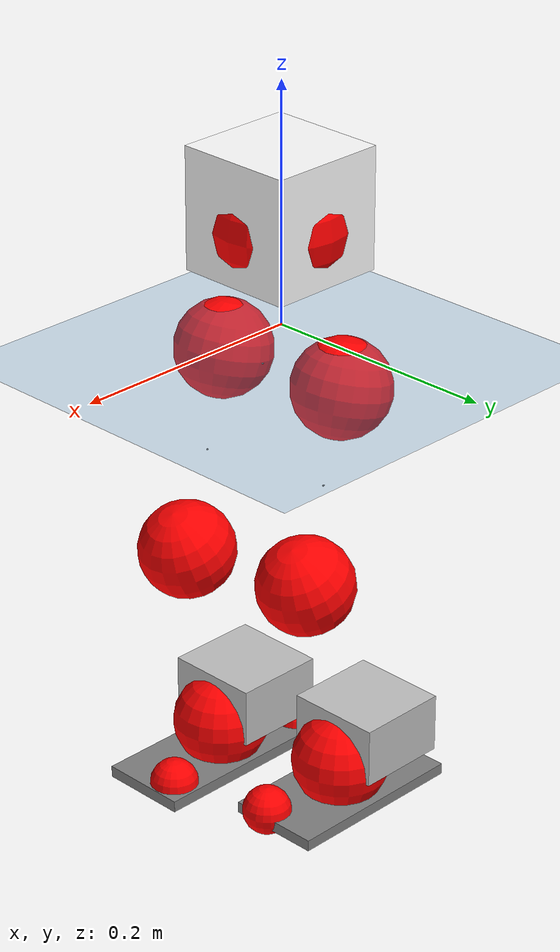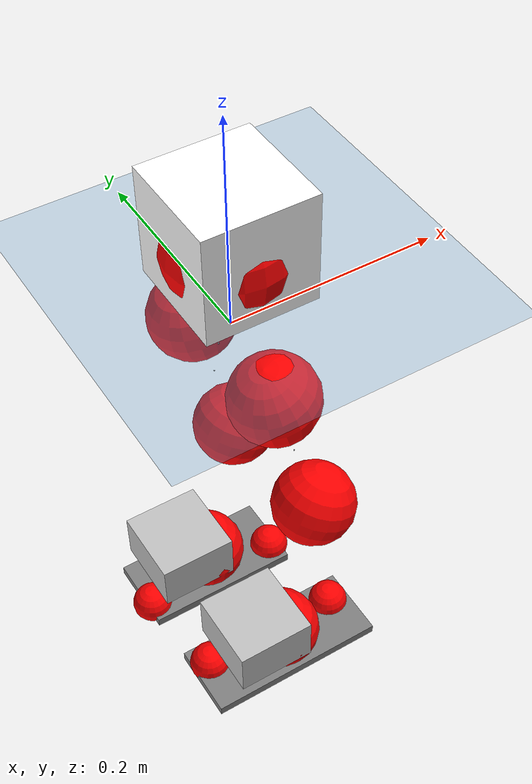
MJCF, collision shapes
<mujoco model="pi_12dof_release_v1">
  <compiler angle="radian" assetdir="assets" balanceinertia="true" inertiafromgeom="false"/>

  <option timestep="0.005" density="1.2" viscosity="2e-05"/>

  <size nkey="1"/>

  <visual>
    <quality shadowsize="8192"/>
    <map shadowclip="0.5"/>
  </visual>

  <default>
    <default class="/">
      <joint armature="0.01" damping="0.01" frictionloss="0.01"/>
      <geom contype="0" conaffinity="0" group="1" solref="-1000 -80"/>
      <site size="0.01 0.005 0.005" group="5"/>
      <general forcelimited="true" biastype="affine" gainprm="20" biasprm="0 -20 -0.5"/>
      <default class="foot">
        <geom size="0.0845 0.036 0.005" type="box" condim="6" group="4" priority="1" friction="0.9 0.2 0.2" solimp="0.015 1 0.005"/>
      </default>
      <default class="reward_collision_sphere">
        <geom group="5" rgba="1 0 0 1"/>
      </default>
    </default>
  </default>

  <asset>
    <texture type="skybox" colorspace="auto" name="//unnamed_texture_0" builtin="gradient" rgb1="0.95 0.95 0.95" rgb2="0.95 0.95 0.95" width="100" height="600"/>
    <texture type="2d" colorspace="auto" name="texplane" builtin="checker" rgb1="0.345 0.575 0.748" rgb2="0.345 0.575 0.748" markrgb="1 1 1" width="512" height="512"/>
    <material name="MatPlane" class="/" texture="texplane" texuniform="true" texrepeat="2 2" specular="0.9"/>
    <mesh name="baselink_1" class="/" file="baselink_1.STL"/>
    <mesh name="r_hip_pitch_link" class="/" file="r_hip_pitch_link.STL"/>
    <mesh name="r_hip_roll_link" class="/" file="r_hip_roll_link.STL"/>
    <mesh name="r_thigh_link" class="/" file="r_thigh_link.STL"/>
    <mesh name="r_calf_link" class="/" file="r_calf_link.STL"/>
    <mesh name="r_ankle_pitch_link" class="/" file="r_ankle_pitch_link.STL"/>
    <mesh name="r_ankle_roll_link" class="/" file="r_ankle_roll_link.STL"/>
    <mesh name="l_hip_pitch_link" class="/" file="l_hip_pitch_link.STL"/>
    <mesh name="l_hip_roll_link" class="/" file="l_hip_roll_link.STL"/>
    <mesh name="l_thigh_link" class="/" file="l_thigh_link.STL"/>
    <mesh name="l_calf_link" class="/" file="l_calf_link.STL"/>
    <mesh name="l_ankle_pitch_link" class="/" file="l_ankle_pitch_link.STL"/>
    <mesh name="l_ankle_roll_link" class="/" file="l_ankle_roll_link.STL"/>
  </asset>

  <worldbody>
    <geom name="floor" class="/" size="100 100 0.125" type="plane" group="0" material="MatPlane"/>
    <light name="toplight_shadow" class="/" pos="0 0 5" dir="0.0990148 0.0990148 -0.990148" type="directional" ambient="0.04 0.04 0.04" diffuse="0.55 0.55 0.55" specular="0.12 0.12 0.12"/>
    <light name="toplight_fill" class="/" pos="0 0 5" dir="0.0990148 0.0990148 -0.990148" type="directional" castshadow="false" ambient="0.04 0.04 0.04" diffuse="0.3 0.3 0.3" specular="0.08 0.08 0.08"/>
    <body name="trunk" pos="-0.000524241 -0.00264114 -0.000260968" quat="0.999999 -0.00114758 -0.000608107 -0.000274291">
      <inertial pos="0.000383893 -0.00248348 0.0512448" quat="0.701031 0.00259089 0.00747239 0.713087" mass="2.27886" diaginertia="0.0128492 0.00257444 0.0103433"/>
      <joint name="//unnamed_joint_0" type="free"/>
      <geom name="//unnamed_geom_1" class="/" type="mesh" density="0" rgba="1 1 1 1" mesh="baselink_1"/>
      <geom name="//unnamed_geom_2" class="/" size="0.0508319 0.0508319 0.0508319" pos="0 0 0.0958933" type="box" rgba="1 1 1 1"/>
      <geom name="//unnamed_geom_3" class="reward_collision_sphere" size="0.0559151" pos="0 0 0.0839066"/>
      <site name="imu" class="/" pos="0.0047659 -0.00207705 -0.00201621" size="0.0101664"/>
      <camera name="track" class="/" pos="0 -1.56638 0" quat="0.707107 0.707107 0 0" mode="trackcom"/>
      <camera name="ego_camera" class="/" pos="0.0801046 0 0.21576" quat="-0.5 -0.5 0.5 0.5"/>
      <body name="r_hip_pitch_link" pos="0.00177035 -0.0169926 -0.0396091" quat="0.992201 -2.41432e-05 -0.124647 -0.000461617">
        <inertial pos="0.00116708 -0.0467854 -0.00133602" quat="-0.0145276 0.703987 -0.022272 0.709714" mass="0.386763" diaginertia="0.00015054 2.8056e-05 0.000204238"/>
        <joint name="r_hip_pitch_joint" class="/" pos="0 0 0" axis="-0.00634181 -0.99997 0.00434214" range="-1.69759 1.29182" armature="0.0104955" damping="0.0244524" frictionloss="0.0114145"/>
        <geom name="//unnamed_geom_4" class="/" type="mesh" density="0" rgba="0.75294 0.75294 0.75294 1" mesh="r_hip_pitch_link"/>
        <geom name="//unnamed_geom_5" class="/" size="0.000508319 0.000508319 0.000508319" type="box" rgba="0.75294 0.75294 0.75294 1"/>
        <body name="r_hip_roll_link" pos="0.00316375 -0.0408366 0.000869074" quat="0.999999 -0.000790465 -0.00046843 0.000450798">
          <inertial pos="-0.00307547 0.00079613 -0.0729749" quat="0.702946 -0.0778033 -0.0797043 0.702468" mass="0.421263" diaginertia="0.000451806 8.47593e-05 0.000319103"/>
          <joint name="r_hip_roll_joint" class="/" pos="0 0 0" axis="-0.999954 0.00801458 -0.0052693" range="-0.124175 0.488495" armature="0.0117118" damping="0.0244682" frictionloss="0.0106415"/>
          <geom name="//unnamed_geom_6" class="/" type="mesh" density="0" rgba="0.75294 0.75294 0.75294 1" mesh="r_hip_roll_link"/>
          <geom name="//unnamed_geom_7" class="/" size="0.000508319 0.000508319 0.000508319" type="box" rgba="0.75294 0.75294 0.75294 1"/>
          <geom name="//unnamed_geom_8" class="reward_collision_sphere" size="0.0406655"/>
          <body name="r_thigh_link" pos="0.00118505 0.00345506 -0.0841779" quat="1 -0.000543249 -0.00033177 0.00050932">
            <inertial pos="-0.00213242 -0.00148109 -0.059818" quat="0.738879 0.673832 -0.00280029 -0.000197851" mass="0.115534" diaginertia="0.000167932 2.7858e-05 0.000140476"/>
            <joint name="r_thigh_joint" class="/" pos="0 0 0" axis="-0.00121902 0.0114647 -0.999934" range="-0.346023 0.549535" armature="0.0116894" damping="0" frictionloss="0.0113377"/>
            <geom name="//unnamed_geom_9" class="/" type="mesh" density="0" rgba="0.75294 0.75294 0.75294 1" mesh="r_thigh_link"/>
            <geom name="//unnamed_geom_10" class="/" size="0.000508319 0.000508319 0.000508319" type="box" rgba="0.75294 0.75294 0.75294 1"/>
            <body name="r_calf_link" pos="-0.00140747 -0.00339704 -0.0864561" quat="0.947567 8.20126e-06 0.319556 -8.40759e-05">
              <inertial pos="0.000738125 0.00051308 -0.0848237" quat="0.999839 -0.00387813 0.00473407 0.016864" mass="0.849852" diaginertia="0.00475373 0.00103172 0.000437906"/>
              <joint name="r_calf_joint" class="/" pos="0 0 0" axis="-0.0102123 -0.999946 -0.00172791" range="-1.691 0.668003" armature="0.0103874" damping="0" frictionloss="0.0114676"/>
              <geom name="//unnamed_geom_11" class="/" type="mesh" density="0" rgba="0.75294 0.75294 0.75294 1" mesh="r_calf_link"/>
              <geom name="//unnamed_geom_12" class="/" size="0.000508319 0.000508319 0.000508319" type="box" rgba="0.75294 0.75294 0.75294 1"/>
              <geom name="//unnamed_geom_13" class="reward_collision_sphere" size="0.0406655"/>
              <body name="r_ankle_pitch_link" pos="-0.00082169 -0.00108894 -0.170009" quat="0.980066 5.91984e-05 -0.198674 2.78745e-07">
                <inertial pos="0.00689482 0.00035415 0.00216263" quat="0.00358965 0.704849 -0.00145975 0.709347" mass="0.185762" diaginertia="0.00041518 6.55441e-05 0.000297347"/>
                <joint name="r_ankle_pitch_joint" class="/" pos="0 0 0" axis="-0.00302281 -0.999993 -0.0020048" stiffness="0.0019927" range="-1.3505 0.451433" armature="0.0114463" damping="0.00759118" frictionloss="0.011518"/>
                <geom name="//unnamed_geom_14" class="/" type="mesh" density="0" rgba="0.75294 0.75294 0.75294 1" mesh="r_ankle_pitch_link"/>
                <geom name="//unnamed_geom_15" class="/" size="0.0396489 0.0406655 0.025416" type="box" rgba="0.75294 0.75294 0.75294 1"/>
                <body name="r_ankle_roll_link" pos="0.0817832 -0.000221467 0.00243238" quat="1 -0.000195754 0.000199335 -9.5812e-05">
                  <inertial pos="-0.028048 0.00275683 -0.0180847" quat="0.555652 0.433952 0.432466 0.562059" mass="0.55956" diaginertia="0.00159255 0.000322273 0.000697101"/>
                  <joint name="r_ankle_roll_joint" class="/" pos="0 0 0" axis="-0.999974 -0.00246715 0.00671754" stiffness="0.0101574" range="-0.111398 0.208155" armature="0.0106185" damping="0.0222748" frictionloss="0.0103246"/>
                  <geom name="//unnamed_geom_16" class="/" type="mesh" density="0" rgba="0.75294 0.75294 0.75294 1" mesh="r_ankle_roll_link"/>
                  <geom name="//unnamed_geom_17" class="/" type="mesh" rgba="0.75294 0.75294 0.75294 1" mesh="r_ankle_roll_link"/>
                  <geom name="right_foot" class="foot" size="0.0917252 0.0379515 0.00494732" pos="-0.0544711 0 -0.0527413"/>
                  <geom name="//unnamed_geom_19" class="reward_collision_sphere" size="0.0406655" pos="-0.0534031 0 -0.0239733"/>
                  <geom name="//unnamed_geom_20" class="reward_collision_sphere" size="0.0203328" pos="0.0160209 0.0156638 -0.0479466"/>
                  <geom name="//unnamed_geom_21" class="reward_collision_sphere" size="0.0203328" pos="-0.128167 0.0156638 -0.0479466"/>
                  <site name="right_foot" class="foot" pos="-0.0544711 0 -0.0527413" size="0.0101664"/>
                </body>
              </body>
            </body>
          </body>
        </body>
      </body>
      <body name="l_hip_pitch_link" pos="-0.00236833 0.0203009 -0.0364225" quat="0.992217 4.85071e-05 -0.124521 -1.67806e-05">
        <inertial pos="3.08763e-05 0.0425649 0.00242007" quat="-0.0395748 0.706725 0.0278066 0.705834" mass="0.394632" diaginertia="0.000177902 2.98713e-05 0.000252939"/>
        <joint name="l_hip_pitch_joint" class="/" pos="0 0 0" axis="-0.000693961 1 -0.000221726" stiffness="0.0103469" range="-1.27458 1.80811" armature="0.010206" damping="0.00861661" frictionloss="0.00991206"/>
        <geom name="//unnamed_geom_22" class="/" type="mesh" density="0" rgba="0.75294 0.75294 0.75294 1" mesh="l_hip_pitch_link"/>
        <geom name="//unnamed_geom_23" class="/" size="0.000508319 0.000508319 0.000508319" type="box" rgba="0.75294 0.75294 0.75294 1"/>
        <body name="l_hip_roll_link" pos="-0.0021768 0.0419287 0.000998494" quat="0.999999 0.000178376 0.000606664 0.00098627">
          <inertial pos="-0.00353803 0.00173422 -0.0726859" quat="0.70324 -0.0872214 -0.0805268 0.700972" mass="0.397145" diaginertia="0.000450864 8.41178e-05 0.000328698"/>
          <joint name="l_hip_roll_joint" class="/" pos="0 0 0" axis="-0.999934 -0.0114755 -0.000632429" stiffness="0.00068502" range="-0.506753 0.125623" armature="0.0111711" damping="0.00725136" frictionloss="0.00905133"/>
          <geom name="//unnamed_geom_24" class="/" type="mesh" density="0" rgba="0.75294 0.75294 0.75294 1" mesh="l_hip_roll_link"/>
          <geom name="//unnamed_geom_25" class="/" size="0.000508319 0.000508319 0.000508319" type="box" rgba="0.75294 0.75294 0.75294 1"/>
          <geom name="//unnamed_geom_26" class="reward_collision_sphere" size="0.0406655"/>
          <body name="l_thigh_link" pos="-0.00151446 -0.00106292 -0.0802184" quat="0.999999 -0.000902724 0.000541123 -6.36228e-05">
            <inertial pos="0.000820426 0.00146363 -0.0552693" quat="0.674503 0.738268 0.000695629 0.00245229" mass="0.116632" diaginertia="0.000165615 2.65863e-05 0.000136536"/>
            <joint name="l_thigh_joint" class="/" pos="0 0 0" axis="-0.000677557 -0.000187786 -1" stiffness="0.00785939" range="-0.59323 0.294276" armature="0.00896197" damping="0" frictionloss="0.0103905"/>
            <geom name="//unnamed_geom_27" class="/" type="mesh" density="0" rgba="0.75294 0.75294 0.75294 1" mesh="l_thigh_link"/>
            <geom name="//unnamed_geom_28" class="/" size="0.000508319 0.000508319 0.000508319" type="box" rgba="0.75294 0.75294 0.75294 1"/>
            <body name="l_calf_link" pos="-0.00271893 -0.000818907 -0.0840788" quat="0.947607 -0.000484207 0.319437 0.000700357">
              <inertial pos="-0.000560635 0.001755 -0.0833436" quat="0.99998 0.00507776 0.00120408 0.00347248" mass="0.836628" diaginertia="0.00478935 0.00101005 0.000430667"/>
              <joint name="l_calf_joint" class="/" pos="0 0 0" axis="-0.00966026 0.999953 -0.00128313" range="-0.594977 1.64231" armature="0.00939002" damping="0.0115188" frictionloss="0.0101605"/>
              <geom name="//unnamed_geom_29" class="/" type="mesh" density="0" rgba="0.75294 0.75294 0.75294 1" mesh="l_calf_link"/>
              <geom name="//unnamed_geom_30" class="/" size="0.000508319 0.000508319 0.000508319" type="box" rgba="0.75294 0.75294 0.75294 1"/>
              <geom name="//unnamed_geom_31" class="reward_collision_sphere" size="0.0406655"/>
              <body name="l_ankle_pitch_link" pos="-0.00266553 0.0035875 -0.169184" quat="0.980086 -0.000437699 -0.198572 0.000157904">
                <inertial pos="0.00567349 -0.00363897 0.00128867" quat="0.000828333 0.707881 0.00632286 0.706302" mass="0.183996" diaginertia="0.000430127 6.4858e-05 0.000284904"/>
                <joint name="l_ankle_pitch_joint" class="/" pos="0 0 0" axis="0.00378511 0.999992 0.0011411" stiffness="0.00753822" range="-0.477078 1.29524" armature="0.00892271" damping="0.0229248" frictionloss="0.00890725"/>
                <geom name="//unnamed_geom_32" class="/" type="mesh" density="0" rgba="0.75294 0.75294 0.75294 1" mesh="l_ankle_pitch_link"/>
                <geom name="//unnamed_geom_33" class="/" size="0.0396489 0.0406655 0.025416" type="box" rgba="0.75294 0.75294 0.75294 1"/>
                <body name="l_ankle_roll_link" pos="0.0821594 -0.00105446 0.0012049" quat="1 -3.04737e-05 0.000202083 9.16046e-05">
                  <inertial pos="-0.0287266 -0.0011088 -0.0176537" quat="0.559013 0.431392 0.433844 0.559629" mass="0.560775" diaginertia="0.00156725 0.000309488 0.000706299"/>
                  <joint name="l_ankle_roll_joint" class="/" pos="0 0 0" axis="-0.999999 0.000866886 -0.000986111" stiffness="0.000411557" range="-0.10995 0.162243" armature="0.010682" damping="0" frictionloss="0.00975249"/>
                  <geom name="//unnamed_geom_34" class="/" type="mesh" density="0" rgba="0.75294 0.75294 0.75294 1" mesh="l_ankle_roll_link"/>
                  <geom name="//unnamed_geom_35" class="/" type="mesh" rgba="0.75294 0.75294 0.75294 1" mesh="l_ankle_roll_link"/>
                  <geom name="left_foot" class="foot" size="0.0795658 0.0397074 0.00480375" pos="-0.0544711 0 -0.0527413"/>
                  <geom name="//unnamed_geom_37" class="reward_collision_sphere" size="0.0406655" pos="-0.0534031 0 -0.0239733"/>
                  <geom name="//unnamed_geom_38" class="reward_collision_sphere" size="0.0203328" pos="0.0160209 -0.0156638 -0.0479466"/>
                  <geom name="//unnamed_geom_39" class="reward_collision_sphere" size="0.0203328" pos="-0.128167 -0.0156638 -0.0479466"/>
                  <site name="left_foot" class="foot" pos="-0.0544711 0 -0.0527413" size="0.0101664"/>
                </body>
              </body>
            </body>
          </body>
        </body>
      </body>
    </body>
  </worldbody>

  <contact>
    <pair class="/" geom1="floor" geom2="right_foot" name="//unnamed_contact_1"/>
    <pair class="/" geom1="floor" geom2="left_foot" name="//unnamed_contact_0"/>
  </contact>

  <actuator>
    <general name="r_hip_pitch_joint" class="/" joint="r_hip_pitch_joint" forcerange="-20.4396 20.4396" gainprm="19.5485" biasprm="0 -19.5485 -0.534714"/>
    <general name="r_hip_roll_joint" class="/" joint="r_hip_roll_joint" forcerange="-22.9835 22.9835" gainprm="19.5485" biasprm="0 -19.5485 -0.534714"/>
    <general name="r_thigh_joint" class="/" joint="r_thigh_joint" forcerange="-21.2143 21.2143" gainprm="19.5485" biasprm="0 -19.5485 -0.534714"/>
    <general name="r_calf_joint" class="/" joint="r_calf_joint" forcerange="-20.8786 20.8786" gainprm="19.5485" biasprm="0 -19.5485 -0.534714"/>
    <general name="r_ankle_pitch_joint" class="/" joint="r_ankle_pitch_joint" forcerange="-21.3113 21.3113" gainprm="19.5485" biasprm="0 -19.5485 -0.534714"/>
    <general name="r_ankle_roll_joint" class="/" joint="r_ankle_roll_joint" forcerange="-23.5592 23.5592" gainprm="19.5485" biasprm="0 -19.5485 -0.534714"/>
    <general name="l_hip_pitch_joint" class="/" joint="l_hip_pitch_joint" forcerange="-22.7697 22.7697" gainprm="19.5485" biasprm="0 -19.5485 -0.534714"/>
    <general name="l_hip_roll_joint" class="/" joint="l_hip_roll_joint" forcerange="-21.2887 21.2887" gainprm="19.5485" biasprm="0 -19.5485 -0.534714"/>
    <general name="l_thigh_joint" class="/" joint="l_thigh_joint" forcerange="-21.2558 21.2558" gainprm="19.5485" biasprm="0 -19.5485 -0.534714"/>
    <general name="l_calf_joint" class="/" joint="l_calf_joint" forcerange="-19.8151 19.8151" gainprm="19.5485" biasprm="0 -19.5485 -0.534714"/>
    <general name="l_ankle_pitch_joint" class="/" joint="l_ankle_pitch_joint" forcerange="-21.3194 21.3194" gainprm="19.5485" biasprm="0 -19.5485 -0.534714"/>
    <general name="l_ankle_roll_joint" class="/" joint="l_ankle_roll_joint" forcerange="-19.0901 19.0901" gainprm="19.5485" biasprm="0 -19.5485 -0.534714"/>
  </actuator>

  <sensor>
    <gyro site="imu" name="imu_angular_velocity"/>
    <velocimeter site="imu" name="imu_linear_velocity"/>
    <framelinvel objtype="site" objname="left_foot" name="left_foot_global_linear_velocity"/>
    <framelinvel objtype="site" objname="right_foot" name="right_foot_global_linear_velocity"/>
  </sensor>

  <keyframe>
    <key name="home" qpos="0 0 0.291 1 0 0 0 0.4 0 0 -0.8 0.4 0 -0.4 0 0 0.8 -0.4 0"/>
  </keyframe>
</mujoco>
